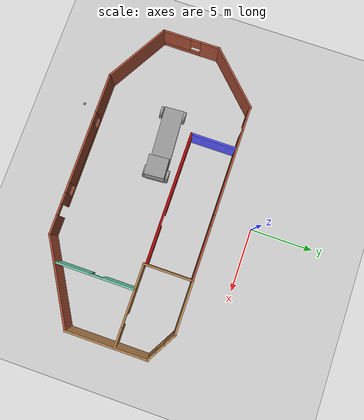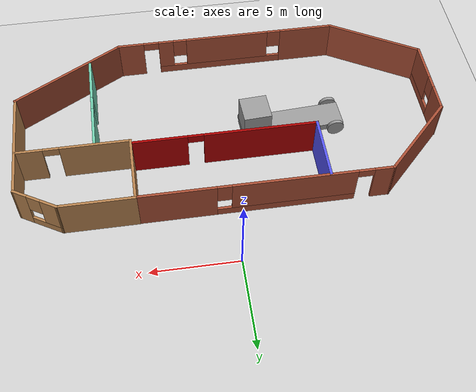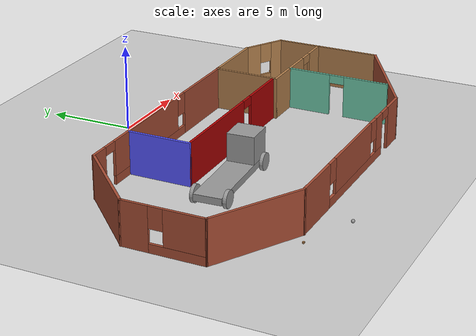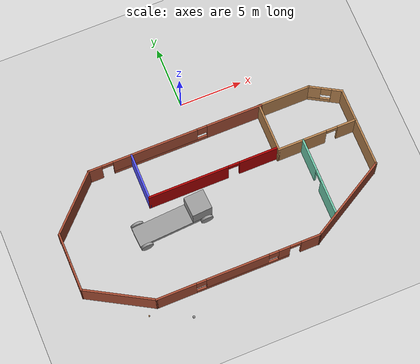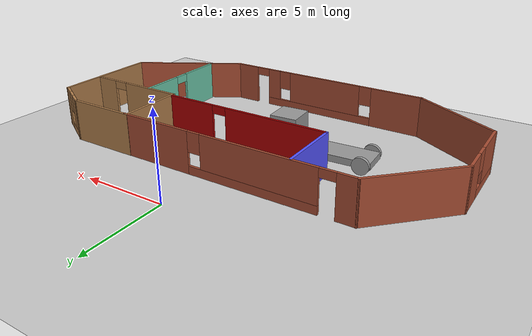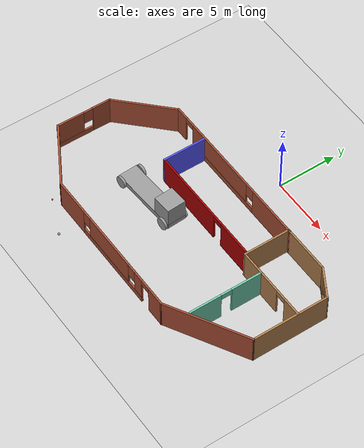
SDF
<sdf version="1.6">
 <world name="default">
  <model name="ground_plane">
   <static>1</static>
   <link name="link">
    <collision name="collision">
     <geometry><plane><normal>0 0 1</normal><size>100 100</size></plane></geometry>
     <surface>
      <contact><collide_bitmask>65535</collide_bitmask></contact>
      <friction><ode><mu>100</mu><mu2>50</mu2></ode></friction>
     </surface>
    </collision>
    <visual name="visual">
     <cast_shadows>0</cast_shadows>
     <geometry><plane><normal>0 0 1</normal><size>100 100</size></plane></geometry>
     <material>
      <script><uri>file://media/materials/scripts/gazebo.material</uri><name>Gazebo/Grey</name></script>
     </material>
    </visual>
   </link>
  </model>
  <model name="truck">
   <link name="link_0">
    <pose>-2e-06 -3e-06 1 0 -0 0</pose>
    <inertial>
     <mass>1</mass>
     <inertia>
      <ixx>0.166667</ixx>
      <ixy>0</ixy>
      <ixz>0</ixz>
      <iyy>0.166667</iyy>
      <iyz>0</iyz>
      <izz>0.166667</izz>
     </inertia>
    </inertial>
    <visual name="visual">
     <geometry><box><size>1.6 1.6 1.6</size></box></geometry>
     <material>
      <lighting>1</lighting>
      <script><uri>file://media/materials/scripts/gazebo.material</uri><name>Gazebo/Grey</name></script>
      <shader type="pixel"><normal_map>__default__</normal_map></shader>
      <ambient>0.3 0.3 0.3 1</ambient>
      <diffuse>0.7 0.7 0.7 1</diffuse>
      <specular>0.01 0.01 0.01 1</specular>
      <emissive>0 0 0 1</emissive>
     </material>
    </visual>
    <collision name="collision">
     <geometry><box><size>1.6 1.6 1.6</size></box></geometry>
     <surface>
      <friction>
       <ode><mu>1</mu><mu2>1</mu2><fdir1>0 0 0</fdir1><slip1>0</slip1><slip2>0</slip2></ode>
       <torsional>
        <coefficient>1</coefficient>
        <patch_radius>0</patch_radius>
        <surface_radius>0</surface_radius>
        <use_patch_radius>1</use_patch_radius>
        <ode><slip>0</slip></ode>
       </torsional>
      </friction>
      <bounce><restitution_coefficient>0</restitution_coefficient><threshold>1e+06</threshold></bounce>
      <contact>
       <collide_without_contact>0</collide_without_contact>
       <collide_without_contact_bitmask>1</collide_without_contact_bitmask>
       <collide_bitmask>1</collide_bitmask>
       <ode>
        <soft_cfm>0</soft_cfm>
        <soft_erp>0.2</soft_erp>
        <kp>1e+13</kp>
        <kd>1</kd>
        <max_vel>0.01</max_vel>
        <min_depth>0</min_depth>
       </ode>
       <bullet>
        <split_impulse>1</split_impulse>
        <split_impulse_penetration_threshold>-0.01</split_impulse_penetration_threshold>
        <soft_cfm>0</soft_cfm>
        <soft_erp>0.2</soft_erp>
        <kp>1e+13</kp>
        <kd>1</kd>
       </bullet>
      </contact>
     </surface>
    </collision>
   </link>
   <link name="link_1">
    <pose>-2e-06 2.2 0 0 -0 0</pose>
    <inertial>
     <mass>1</mass>
     <inertia>
      <ixx>0.166667</ixx>
      <ixy>0</ixy>
      <ixz>0</ixz>
      <iyy>0.166667</iyy>
      <iyz>0</iyz>
      <izz>0.166667</izz>
     </inertia>
    </inertial>
    <visual name="visual">
     <geometry><box><size>1.6 6 0.4</size></box></geometry>
     <material>
      <lighting>1</lighting>
      <script><uri>file://media/materials/scripts/gazebo.material</uri><name>Gazebo/Grey</name></script>
      <shader type="pixel"><normal_map>__default__</normal_map></shader>
      <ambient>0.3 0.3 0.3 1</ambient>
      <diffuse>0.7 0.7 0.7 1</diffuse>
      <specular>0.01 0.01 0.01 1</specular>
      <emissive>0 0 0 1</emissive>
     </material>
    </visual>
    <collision name="collision">
     <geometry><box><size>1.6 6 0.4</size></box></geometry>
     <surface>
      <friction>
       <ode><mu>1</mu><mu2>1</mu2><fdir1>0 0 0</fdir1><slip1>0</slip1><slip2>0</slip2></ode>
       <torsional>
        <coefficient>1</coefficient>
        <patch_radius>0</patch_radius>
        <surface_radius>0</surface_radius>
        <use_patch_radius>1</use_patch_radius>
        <ode><slip>0</slip></ode>
       </torsional>
      </friction>
      <bounce><restitution_coefficient>0</restitution_coefficient><threshold>1e+06</threshold></bounce>
      <contact>
       <collide_without_contact>0</collide_without_contact>
       <collide_without_contact_bitmask>1</collide_without_contact_bitmask>
       <collide_bitmask>1</collide_bitmask>
       <ode>
        <soft_cfm>0</soft_cfm>
        <soft_erp>0.2</soft_erp>
        <kp>1e+13</kp>
        <kd>1</kd>
        <max_vel>0.01</max_vel>
        <min_depth>0</min_depth>
       </ode>
       <bullet>
        <split_impulse>1</split_impulse>
        <split_impulse_penetration_threshold>-0.01</split_impulse_penetration_threshold>
        <soft_cfm>0</soft_cfm>
        <soft_erp>0.2</soft_erp>
        <kp>1e+13</kp>
        <kd>1</kd>
       </bullet>
      </contact>
     </surface>
    </collision>
   </link>
   <link name="link_2">
    <pose>0.900094 -0.299986 -2e-06 1.5707 0 1.5707</pose>
    <inertial>
     <mass>1</mass>
     <inertia><ixx>0.145833</ixx><ixy>0</ixy><ixz>0</ixz><iyy>0.145833</iyy><iyz>0</iyz><izz>0.125</izz></inertia>
    </inertial>
    <visual name="visual">
     <geometry><cylinder><radius>0.5</radius><length>0.2</length></cylinder></geometry>
     <material>
      <lighting>1</lighting>
      <script><uri>file://media/materials/scripts/gazebo.material</uri><name>Gazebo/Grey</name></script>
      <shader type="pixel"><normal_map>__default__</normal_map></shader>
      <ambient>0.3 0.3 0.3 1</ambient>
      <diffuse>0.7 0.7 0.7 1</diffuse>
      <specular>0.01 0.01 0.01 1</specular>
      <emissive>0 0 0 1</emissive>
     </material>
    </visual>
    <collision name="collision">
     <geometry><cylinder><radius>0.5</radius><length>0.2</length></cylinder></geometry>
     <surface>
      <friction>
       <ode><mu>1</mu><mu2>1</mu2><fdir1>0 0 0</fdir1><slip1>0</slip1><slip2>0</slip2></ode>
       <torsional>
        <coefficient>1</coefficient>
        <patch_radius>0</patch_radius>
        <surface_radius>0</surface_radius>
        <use_patch_radius>1</use_patch_radius>
        <ode><slip>0</slip></ode>
       </torsional>
      </friction>
      <bounce><restitution_coefficient>0</restitution_coefficient><threshold>1e+06</threshold></bounce>
      <contact>
       <collide_without_contact>0</collide_without_contact>
       <collide_without_contact_bitmask>1</collide_without_contact_bitmask>
       <collide_bitmask>1</collide_bitmask>
       <ode>
        <soft_cfm>0</soft_cfm>
        <soft_erp>0.2</soft_erp>
        <kp>1e+13</kp>
        <kd>1</kd>
        <max_vel>0.01</max_vel>
        <min_depth>0</min_depth>
       </ode>
       <bullet>
        <split_impulse>1</split_impulse>
        <split_impulse_penetration_threshold>-0.01</split_impulse_penetration_threshold>
        <soft_cfm>0</soft_cfm>
        <soft_erp>0.2</soft_erp>
        <kp>1e+13</kp>
        <kd>1</kd>
       </bullet>
      </contact>
     </surface>
    </collision>
   </link>
   <link name="link_2_clone">
    <pose>-0.940098 -0.299986 -2e-06 1.5707 0 1.5707</pose>
    <inertial>
     <mass>1</mass>
     <inertia><ixx>0.145833</ixx><ixy>0</ixy><ixz>0</ixz><iyy>0.145833</iyy><iyz>0</iyz><izz>0.125</izz></inertia>
    </inertial>
    <visual name="visual">
     <geometry><cylinder><radius>0.5</radius><length>0.2</length></cylinder></geometry>
     <material>
      <lighting>1</lighting>
      <script><uri>file://media/materials/scripts/gazebo.material</uri><name>Gazebo/Grey</name></script>
      <shader type="pixel"><normal_map>__default__</normal_map></shader>
      <ambient>0.3 0.3 0.3 1</ambient>
      <diffuse>0.7 0.7 0.7 1</diffuse>
      <specular>0.01 0.01 0.01 1</specular>
      <emissive>0 0 0 1</emissive>
     </material>
    </visual>
    <collision name="collision">
     <geometry><cylinder><radius>0.5</radius><length>0.2</length></cylinder></geometry>
     <surface>
      <friction>
       <ode><mu>1</mu><mu2>1</mu2><fdir1>0 0 0</fdir1><slip1>0</slip1><slip2>0</slip2></ode>
       <torsional>
        <coefficient>1</coefficient>
        <patch_radius>0</patch_radius>
        <surface_radius>0</surface_radius>
        <use_patch_radius>1</use_patch_radius>
        <ode><slip>0</slip></ode>
       </torsional>
      </friction>
      <bounce><restitution_coefficient>0</restitution_coefficient><threshold>1e+06</threshold></bounce>
      <contact>
       <collide_without_contact>0</collide_without_contact>
       <collide_without_contact_bitmask>1</collide_without_contact_bitmask>
       <collide_bitmask>1</collide_bitmask>
       <ode>
        <soft_cfm>0</soft_cfm>
        <soft_erp>0.2</soft_erp>
        <kp>1e+13</kp>
        <kd>1</kd>
        <max_vel>0.01</max_vel>
        <min_depth>0</min_depth>
       </ode>
       <bullet>
        <split_impulse>1</split_impulse>
        <split_impulse_penetration_threshold>-0.01</split_impulse_penetration_threshold>
        <soft_cfm>0</soft_cfm>
        <soft_erp>0.2</soft_erp>
        <kp>1e+13</kp>
        <kd>1</kd>
       </bullet>
      </contact>
     </surface>
    </collision>
   </link>
   <link name="link_2_clone_0">
    <pose>-0.940098 4.69999 -2e-06 1.5707 0 1.5707</pose>
    <inertial>
     <mass>1</mass>
     <inertia><ixx>0.145833</ixx><ixy>0</ixy><ixz>0</ixz><iyy>0.145833</iyy><iyz>0</iyz><izz>0.125</izz></inertia>
    </inertial>
    <visual name="visual">
     <geometry><cylinder><radius>0.5</radius><length>0.2</length></cylinder></geometry>
     <material>
      <lighting>1</lighting>
      <script><uri>file://media/materials/scripts/gazebo.material</uri><name>Gazebo/Grey</name></script>
      <shader type="pixel"><normal_map>__default__</normal_map></shader>
      <ambient>0.3 0.3 0.3 1</ambient>
      <diffuse>0.7 0.7 0.7 1</diffuse>
      <specular>0.01 0.01 0.01 1</specular>
      <emissive>0 0 0 1</emissive>
     </material>
    </visual>
    <collision name="collision">
     <geometry><cylinder><radius>0.5</radius><length>0.2</length></cylinder></geometry>
     <surface>
      <friction>
       <ode><mu>1</mu><mu2>1</mu2><fdir1>0 0 0</fdir1><slip1>0</slip1><slip2>0</slip2></ode>
       <torsional>
        <coefficient>1</coefficient>
        <patch_radius>0</patch_radius>
        <surface_radius>0</surface_radius>
        <use_patch_radius>1</use_patch_radius>
        <ode><slip>0</slip></ode>
       </torsional>
      </friction>
      <bounce><restitution_coefficient>0</restitution_coefficient><threshold>1e+06</threshold></bounce>
      <contact>
       <collide_without_contact>0</collide_without_contact>
       <collide_without_contact_bitmask>1</collide_without_contact_bitmask>
       <collide_bitmask>1</collide_bitmask>
       <ode>
        <soft_cfm>0</soft_cfm>
        <soft_erp>0.2</soft_erp>
        <kp>1e+13</kp>
        <kd>1</kd>
        <max_vel>0.01</max_vel>
        <min_depth>0</min_depth>
       </ode>
       <bullet>
        <split_impulse>1</split_impulse>
        <split_impulse_penetration_threshold>-0.01</split_impulse_penetration_threshold>
        <soft_cfm>0</soft_cfm>
        <soft_erp>0.2</soft_erp>
        <kp>1e+13</kp>
        <kd>1</kd>
       </bullet>
      </contact>
     </surface>
    </collision>
   </link>
   <link name="link_2_clone_1">
    <pose>0.900094 4.69999 -2e-06 1.5707 0 1.5707</pose>
    <inertial>
     <mass>1</mass>
     <inertia><ixx>0.145833</ixx><ixy>0</ixy><ixz>0</ixz><iyy>0.145833</iyy><iyz>0</iyz><izz>0.125</izz></inertia>
    </inertial>
    <visual name="visual">
     <geometry><cylinder><radius>0.5</radius><length>0.2</length></cylinder></geometry>
     <material>
      <lighting>1</lighting>
      <script><uri>file://media/materials/scripts/gazebo.material</uri><name>Gazebo/Grey</name></script>
      <shader type="pixel"><normal_map>__default__</normal_map></shader>
      <ambient>0.3 0.3 0.3 1</ambient>
      <diffuse>0.7 0.7 0.7 1</diffuse>
      <specular>0.01 0.01 0.01 1</specular>
      <emissive>0 0 0 1</emissive>
     </material>
    </visual>
    <collision name="collision">
     <geometry><cylinder><radius>0.5</radius><length>0.2</length></cylinder></geometry>
     <surface>
      <friction>
       <ode><mu>1</mu><mu2>1</mu2><fdir1>0 0 0</fdir1><slip1>0</slip1><slip2>0</slip2></ode>
       <torsional>
        <coefficient>1</coefficient>
        <patch_radius>0</patch_radius>
        <surface_radius>0</surface_radius>
        <use_patch_radius>1</use_patch_radius>
        <ode><slip>0</slip></ode>
       </torsional>
      </friction>
      <bounce><restitution_coefficient>0</restitution_coefficient><threshold>1e+06</threshold></bounce>
      <contact>
       <collide_without_contact>0</collide_without_contact>
       <collide_without_contact_bitmask>1</collide_without_contact_bitmask>
       <collide_bitmask>1</collide_bitmask>
       <ode>
        <soft_cfm>0</soft_cfm>
        <soft_erp>0.2</soft_erp>
        <kp>1e+13</kp>
        <kd>1</kd>
        <max_vel>0.01</max_vel>
        <min_depth>0</min_depth>
       </ode>
       <bullet>
        <split_impulse>1</split_impulse>
        <split_impulse_penetration_threshold>-0.01</split_impulse_penetration_threshold>
        <soft_cfm>0</soft_cfm>
        <soft_erp>0.2</soft_erp>
        <kp>1e+13</kp>
        <kd>1</kd>
       </bullet>
      </contact>
     </surface>
    </collision>
   </link>
   <joint name="link_0_JOINT_1" type="fixed">
    <parent>link_0</parent>
    <child>link_1</child>
    <physics>
     <ode><limit><cfm>0</cfm><erp>0.2</erp></limit><suspension><cfm>0</cfm><erp>0.2</erp></suspension></ode>
    </physics>
   </joint>
   <joint name="link_1_JOINT_1" type="revolute">
    <parent>link_1</parent>
    <child>link_2</child>
    <axis>
     <xyz>0 0 1</xyz>
     <use_parent_model_frame>0</use_parent_model_frame>
     <limit>
      <lower>-1.79769e+308</lower>
      <upper>1.79769e+308</upper>
      <effort>-1</effort>
      <velocity>-1</velocity>
     </limit>
     <dynamics>
      <spring_reference>0</spring_reference>
      <spring_stiffness>0</spring_stiffness>
      <damping>0</damping>
      <friction>0</friction>
     </dynamics>
    </axis>
    <physics>
     <ode><limit><cfm>0</cfm><erp>0.2</erp></limit><suspension><cfm>0</cfm><erp>0.2</erp></suspension></ode>
    </physics>
   </joint>
   <joint name="link_1_JOINT_2" type="revolute">
    <parent>link_1</parent>
    <child>link_2_clone_1</child>
    <axis>
     <xyz>0 0 1</xyz>
     <use_parent_model_frame>0</use_parent_model_frame>
     <limit>
      <lower>-1.79769e+308</lower>
      <upper>1.79769e+308</upper>
      <effort>-1</effort>
      <velocity>-1</velocity>
     </limit>
     <dynamics>
      <spring_reference>0</spring_reference>
      <spring_stiffness>0</spring_stiffness>
      <damping>0</damping>
      <friction>0</friction>
     </dynamics>
    </axis>
    <physics>
     <ode><limit><cfm>0</cfm><erp>0.2</erp></limit><suspension><cfm>0</cfm><erp>0.2</erp></suspension></ode>
    </physics>
   </joint>
   <joint name="link_1_JOINT_3" type="revolute">
    <parent>link_1</parent>
    <child>link_2_clone</child>
    <axis>
     <xyz>0 0 1</xyz>
     <use_parent_model_frame>0</use_parent_model_frame>
     <limit>
      <lower>-1.79769e+308</lower>
      <upper>1.79769e+308</upper>
      <effort>-1</effort>
      <velocity>-1</velocity>
     </limit>
     <dynamics>
      <spring_reference>0</spring_reference>
      <spring_stiffness>0</spring_stiffness>
      <damping>0</damping>
      <friction>0</friction>
     </dynamics>
    </axis>
    <physics>
     <ode><limit><cfm>0</cfm><erp>0.2</erp></limit><suspension><cfm>0</cfm><erp>0.2</erp></suspension></ode>
    </physics>
   </joint>
   <joint name="link_1_JOINT_4" type="revolute">
    <parent>link_1</parent>
    <child>link_2_clone_0</child>
    <axis>
     <xyz>0 0 1</xyz>
     <use_parent_model_frame>0</use_parent_model_frame>
     <limit>
      <lower>-1.79769e+308</lower>
      <upper>1.79769e+308</upper>
      <effort>-1</effort>
      <velocity>-1</velocity>
     </limit>
     <dynamics>
      <spring_reference>0</spring_reference>
      <spring_stiffness>0</spring_stiffness>
      <damping>0</damping>
      <friction>0</friction>
     </dynamics>
    </axis>
    <physics>
     <ode><limit><cfm>0</cfm><erp>0.2</erp></limit><suspension><cfm>0</cfm><erp>0.2</erp></suspension></ode>
    </physics>
   </joint>
   <static>0</static>
   <pose>-2.03706 -8.5625 0.500006 -1e-06 4e-06 1.63015</pose>
  </model>
  <model name="my_ball">
   <link name="link_0">
    <inertial>
     <mass>1</mass>
     <inertia><ixx>0.1</ixx><ixy>0</ixy><ixz>0</ixz><iyy>0.1</iyy><iyz>0</iyz><izz>0.1</izz></inertia>
    </inertial>
    <visual name="visual">
     <geometry><sphere><radius>0.1</radius></sphere></geometry>
     <material>
      <lighting>1</lighting>
      <script><uri>file://media/materials/scripts/gazebo.material</uri><name>Gazebo/Grey</name></script>
      <shader type="pixel"><normal_map>__default__</normal_map></shader>
      <ambient>1 1 1 1</ambient>
      <diffuse>1 1 1 1</diffuse>
      <specular>1 1 1 1</specular>
      <emissive>1 1 1 1</emissive>
     </material>
    </visual>
    <collision name="collision">
     <geometry><sphere><radius>0.1</radius></sphere></geometry>
     <surface>
      <friction>
       <ode><mu>1</mu><mu2>1</mu2><fdir1>0 0 0</fdir1><slip1>0</slip1><slip2>0</slip2></ode>
       <torsional>
        <coefficient>1</coefficient>
        <patch_radius>0</patch_radius>
        <surface_radius>0</surface_radius>
        <use_patch_radius>1</use_patch_radius>
        <ode><slip>0</slip></ode>
       </torsional>
      </friction>
      <bounce><restitution_coefficient>0</restitution_coefficient><threshold>1e+06</threshold></bounce>
      <contact>
       <collide_without_contact>0</collide_without_contact>
       <collide_without_contact_bitmask>1</collide_without_contact_bitmask>
       <collide_bitmask>1</collide_bitmask>
       <ode>
        <soft_cfm>0</soft_cfm>
        <soft_erp>0.2</soft_erp>
        <kp>1e+13</kp>
        <kd>1</kd>
        <max_vel>0.01</max_vel>
        <min_depth>0</min_depth>
       </ode>
       <bullet>
        <split_impulse>1</split_impulse>
        <split_impulse_penetration_threshold>-0.01</split_impulse_penetration_threshold>
        <soft_cfm>0</soft_cfm>
        <soft_erp>0.2</soft_erp>
        <kp>1e+13</kp>
        <kd>1</kd>
       </bullet>
      </contact>
     </surface>
    </collision>
   </link>
   <static>0</static>
   <pose>-5.44074 -16.0958 0.1 0 -0 0</pose>
  </model>
  <model name="wood_cube_10cm_clone">
   <link name="link">
    <pose>0 0 0.05 0 -0 0</pose>
    <inertial>
     <mass>0.5167</mass>
     <inertia>
      <ixx>0.000861167</ixx>
      <ixy>0</ixy>
      <ixz>0</ixz>
      <iyy>0.000861167</iyy>
      <iyz>0</iyz>
      <izz>0.000861167</izz>
     </inertia>
    </inertial>
    <collision name="collision">
     <geometry><box><size>0.1 0.1 0.1</size></box></geometry>
     <surface>
      <contact>
       <poissons_ratio>0.347</poissons_ratio>
       <elastic_modulus>8.8e+09</elastic_modulus>
       <ode><kp>100000</kp><kd>100</kd><max_vel>100</max_vel><min_depth>0.001</min_depth></ode>
      </contact>
      <friction>
       <torsional>
        <coefficient>1</coefficient>
        <use_patch_radius>0</use_patch_radius>
        <surface_radius>0.01</surface_radius>
       </torsional>
      </friction>
     </surface>
    </collision>
    <visual name="visual">
     <geometry><box><size>0.1 0.1 0.1</size></box></geometry>
     <material>
      <script><uri>file://media/materials/scripts/gazebo.material</uri><name>Gazebo/Wood</name></script>
     </material>
    </visual>
   </link>
   <pose>-8.49094 -14.7422 -0.001013 0 -0 0</pose>
  </model>
  <model name="building">
   <pose>-0.481454 -8.77546 0 0 -0 0</pose>
   <link name="Wall_0">
    <pose>-1.21443 5.58302 0 0 -0 3.14159</pose>
    <visual name="Wall_0_Visual_0">
     <pose>-4.8541 0 1.25 0 -0 0</pose>
     <geometry><box><size>4.5418 0.15 2.5</size></box></geometry>
     <material>
      <script><uri>file://media/materials/scripts/gazebo.material</uri><name>Gazebo/Bricks</name></script>
      <ambient>1 1 0.498039 1</ambient>
     </material>
     <meta><layer>0</layer></meta>
    </visual>
    <collision name="Wall_0_Collision_0">
     <geometry><box><size>4.5418 0.15 2.5</size></box></geometry>
     <pose>-4.8541 0 1.25 0 -0 0</pose>
    </collision>
    <visual name="Wall_0_Visual_1">
     <pose>6.5576 0 1.25 0 -0 0</pose>
     <geometry><box><size>1.1348 0.15 2.5</size></box></geometry>
     <material>
      <script><uri>file://media/materials/scripts/gazebo.material</uri><name>Gazebo/Bricks</name></script>
      <ambient>1 1 0.498039 1</ambient>
     </material>
     <meta><layer>0</layer></meta>
    </visual>
    <collision name="Wall_0_Collision_1">
     <geometry><box><size>1.1348 0.15 2.5</size></box></geometry>
     <pose>6.5576 0 1.25 0 -0 0</pose>
    </collision>
    <visual name="Wall_0_Visual_2">
     <pose>1.2535 0 0.25 0 -0 0</pose>
     <geometry><box><size>7.6734 0.15 0.5</size></box></geometry>
     <material>
      <script><uri>file://media/materials/scripts/gazebo.material</uri><name>Gazebo/Bricks</name></script>
      <ambient>1 1 0.498039 1</ambient>
     </material>
     <meta><layer>0</layer></meta>
    </visual>
    <collision name="Wall_0_Collision_2">
     <geometry><box><size>7.6734 0.15 0.5</size></box></geometry>
     <pose>1.2535 0 0.25 0 -0 0</pose>
    </collision>
    <visual name="Wall_0_Visual_3">
     <pose>1.6535 0 1.5 0 -0 0</pose>
     <geometry><box><size>6.8734 0.15 2</size></box></geometry>
     <material>
      <script><uri>file://media/materials/scripts/gazebo.material</uri><name>Gazebo/Bricks</name></script>
      <ambient>1 1 0.498039 1</ambient>
     </material>
     <meta><layer>0</layer></meta>
    </visual>
    <collision name="Wall_0_Collision_3">
     <geometry><box><size>6.8734 0.15 2</size></box></geometry>
     <pose>1.6535 0 1.5 0 -0 0</pose>
    </collision>
    <visual name="Wall_0_Visual_4">
     <pose>-2.1832 0 1.9 0 -0 0</pose>
     <geometry><box><size>0.8 0.15 1.2</size></box></geometry>
     <material>
      <script><uri>file://media/materials/scripts/gazebo.material</uri><name>Gazebo/Bricks</name></script>
      <ambient>1 1 0.498039 1</ambient>
     </material>
     <meta><layer>0</layer></meta>
    </visual>
    <collision name="Wall_0_Collision_4">
     <geometry><box><size>0.8 0.15 1.2</size></box></geometry>
     <pose>-2.1832 0 1.9 0 -0 0</pose>
    </collision>
    <visual name="Wall_0_Visual_5">
     <pose>5.5402 0 2.25 0 -0 0</pose>
     <geometry><box><size>0.9 0.15 0.5</size></box></geometry>
     <material>
      <script><uri>file://media/materials/scripts/gazebo.material</uri><name>Gazebo/Bricks</name></script>
      <ambient>1 1 0.498039 1</ambient>
     </material>
     <meta><layer>0</layer></meta>
    </visual>
    <collision name="Wall_0_Collision_5">
     <geometry><box><size>0.9 0.15 0.5</size></box></geometry>
     <pose>5.5402 0 2.25 0 -0 0</pose>
    </collision>
   </link>
   <link name="Wall_1">
    <collision name="Wall_1_Collision">
     <geometry><box><size>5.5 0.15 2.5</size></box></geometry>
     <pose>0 0 1.25 0 -0 0</pose>
    </collision>
    <visual name="Wall_1_Visual">
     <pose>0 0 1.25 0 -0 0</pose>
     <geometry><box><size>5.5 0.15 2.5</size></box></geometry>
     <material>
      <script><uri>file://media/materials/scripts/gazebo.material</uri><name>Gazebo/Bricks</name></script>
      <ambient>0.333333 0.333333 1 1</ambient>
     </material>
     <meta><layer>0</layer></meta>
    </visual>
    <pose>-10.1559 3.69151 0 0 0 -2.35619</pose>
   </link>
   <link name="Wall_10">
    <pose>8.8744 1.75 0 0 -0 0</pose>
    <visual name="Wall_10_Visual_0">
     <pose>-1.25342 0 1.25 0 -0 0</pose>
     <geometry><box><size>3.99316 0.15 2.5</size></box></geometry>
     <material>
      <script><uri>file://media/materials/scripts/gazebo.material</uri><name>Gazebo/Wood</name></script>
      <ambient>1 1 1 1</ambient>
     </material>
     <meta><layer>0</layer></meta>
    </visual>
    <collision name="Wall_10_Collision_0">
     <geometry><box><size>3.99316 0.15 2.5</size></box></geometry>
     <pose>-1.25342 0 1.25 0 -0 0</pose>
    </collision>
    <visual name="Wall_10_Visual_1">
     <pose>2.44658 0 1.25 0 -0 0</pose>
     <geometry><box><size>1.60684 0.15 2.5</size></box></geometry>
     <material>
      <script><uri>file://media/materials/scripts/gazebo.material</uri><name>Gazebo/Wood</name></script>
      <ambient>1 1 1 1</ambient>
     </material>
     <meta><layer>0</layer></meta>
    </visual>
    <collision name="Wall_10_Collision_1">
     <geometry><box><size>1.60684 0.15 2.5</size></box></geometry>
     <pose>2.44658 0 1.25 0 -0 0</pose>
    </collision>
    <visual name="Wall_10_Visual_2">
     <pose>1.19317 0 2.25 0 -0 0</pose>
     <geometry><box><size>0.9 0.15 0.5</size></box></geometry>
     <material>
      <script><uri>file://media/materials/scripts/gazebo.material</uri><name>Gazebo/Wood</name></script>
      <ambient>1 1 1 1</ambient>
     </material>
     <meta><layer>0</layer></meta>
    </visual>
    <collision name="Wall_10_Collision_2">
     <geometry><box><size>0.9 0.15 0.5</size></box></geometry>
     <pose>1.19317 0 2.25 0 -0 0</pose>
    </collision>
   </link>
   <link name="Wall_12">
    <collision name="Wall_12_Collision">
     <geometry><box><size>3.75 0.15 2.5</size></box></geometry>
     <pose>0 0 1.25 0 -0 0</pose>
    </collision>
    <visual name="Wall_12_Visual">
     <pose>0 0 1.25 0 -0 0</pose>
     <geometry><box><size>3.75 0.15 2.5</size></box></geometry>
     <material>
      <script><uri>file://media/materials/scripts/gazebo.material</uri><name>Gazebo/Grey</name></script>
      <ambient>0.333333 0.333333 1 1</ambient>
     </material>
     <meta><layer>0</layer></meta>
    </visual>
    <pose>-4.79733 3.73012 0 0 0 -1.5708</pose>
   </link>
   <link name="Wall_13">
    <pose>0.377667 1.93012 0 0 -0 0</pose>
    <visual name="Wall_13_Visual_0">
     <pose>-1.999 0 1.25 0 -0 0</pose>
     <geometry><box><size>6.502 0.15 2.5</size></box></geometry>
     <material>
      <script><uri>file://media/materials/scripts/gazebo.material</uri><name>Gazebo/Grey</name></script>
      <ambient>0.666667 0 0 1</ambient>
     </material>
     <meta><layer>0</layer></meta>
    </visual>
    <collision name="Wall_13_Collision_0">
     <geometry><box><size>6.502 0.15 2.5</size></box></geometry>
     <pose>-1.999 0 1.25 0 -0 0</pose>
    </collision>
    <visual name="Wall_13_Visual_1">
     <pose>3.701 0 1.25 0 -0 0</pose>
     <geometry><box><size>3.098 0.15 2.5</size></box></geometry>
     <material>
      <script><uri>file://media/materials/scripts/gazebo.material</uri><name>Gazebo/Grey</name></script>
      <ambient>0.666667 0 0 1</ambient>
     </material>
     <meta><layer>0</layer></meta>
    </visual>
    <collision name="Wall_13_Collision_1">
     <geometry><box><size>3.098 0.15 2.5</size></box></geometry>
     <pose>3.701 0 1.25 0 -0 0</pose>
    </collision>
    <visual name="Wall_13_Visual_2">
     <pose>1.702 0 2.25 0 -0 0</pose>
     <geometry><box><size>0.9 0.15 0.5</size></box></geometry>
     <material>
      <script><uri>file://media/materials/scripts/gazebo.material</uri><name>Gazebo/Grey</name></script>
      <ambient>0.666667 0 0 1</ambient>
     </material>
     <meta><layer>0</layer></meta>
    </visual>
    <collision name="Wall_13_Collision_2">
     <geometry><box><size>0.9 0.15 0.5</size></box></geometry>
     <pose>1.702 0 2.25 0 -0 0</pose>
    </collision>
   </link>
   <link name="Wall_15">
    <pose>7.68707 -1.32868 0 0 0 -1.5708</pose>
    <visual name="Wall_15_Visual_0">
     <pose>-1.80485 0 1.25 0 -0 0</pose>
     <geometry><box><size>2.6403 0.15 2.5</size></box></geometry>
     <material>
      <script><uri>file://media/materials/scripts/gazebo.material</uri><name>Gazebo/Grey</name></script>
      <ambient>0.435294 0.796078 0.67451 1</ambient>
     </material>
     <meta><layer>0</layer></meta>
    </visual>
    <collision name="Wall_15_Collision_0">
     <geometry><box><size>2.6403 0.15 2.5</size></box></geometry>
     <pose>-1.80485 0 1.25 0 -0 0</pose>
    </collision>
    <visual name="Wall_15_Visual_1">
     <pose>1.77015 0 1.25 0 -0 0</pose>
     <geometry><box><size>2.7097 0.15 2.5</size></box></geometry>
     <material>
      <script><uri>file://media/materials/scripts/gazebo.material</uri><name>Gazebo/Grey</name></script>
      <ambient>0.435294 0.796078 0.67451 1</ambient>
     </material>
     <meta><layer>0</layer></meta>
    </visual>
    <collision name="Wall_15_Collision_1">
     <geometry><box><size>2.7097 0.15 2.5</size></box></geometry>
     <pose>1.77015 0 1.25 0 -0 0</pose>
    </collision>
    <visual name="Wall_15_Visual_2">
     <pose>-0.0347 0 2.25 0 -0 0</pose>
     <geometry><box><size>0.9 0.15 0.5</size></box></geometry>
     <material>
      <script><uri>file://media/materials/scripts/gazebo.material</uri><name>Gazebo/Grey</name></script>
      <ambient>0.435294 0.796078 0.67451 1</ambient>
     </material>
     <meta><layer>0</layer></meta>
    </visual>
    <collision name="Wall_15_Collision_2">
     <geometry><box><size>0.9 0.15 0.5</size></box></geometry>
     <pose>-0.0347 0 2.25 0 -0 0</pose>
    </collision>
   </link>
   <link name="Wall_2">
    <pose>-12.0475 -0.5 0 0 0 -1.5708</pose>
    <visual name="Wall_2_Visual_0">
     <pose>-1.57241 0 1.25 0 -0 0</pose>
     <geometry><box><size>1.60518 0.15 2.5</size></box></geometry>
     <material>
      <script><uri>file://media/materials/scripts/gazebo.material</uri><name>Gazebo/Bricks</name></script>
      <ambient>1 0 0.498039 1</ambient>
     </material>
     <meta><layer>0</layer></meta>
    </visual>
    <collision name="Wall_2_Collision_0">
     <geometry><box><size>1.60518 0.15 2.5</size></box></geometry>
     <pose>-1.57241 0 1.25 0 -0 0</pose>
    </collision>
    <visual name="Wall_2_Visual_1">
     <pose>0.802589 0 0.25 0 -0 0</pose>
     <geometry><box><size>3.14482 0.15 0.5</size></box></geometry>
     <material>
      <script><uri>file://media/materials/scripts/gazebo.material</uri><name>Gazebo/Bricks</name></script>
      <ambient>1 0 0.498039 1</ambient>
     </material>
     <meta><layer>0</layer></meta>
    </visual>
    <collision name="Wall_2_Collision_1">
     <geometry><box><size>3.14482 0.15 0.5</size></box></geometry>
     <pose>0.802589 0 0.25 0 -0 0</pose>
    </collision>
    <visual name="Wall_2_Visual_2">
     <pose>1.20259 0 1.5 0 -0 0</pose>
     <geometry><box><size>2.34482 0.15 2</size></box></geometry>
     <material>
      <script><uri>file://media/materials/scripts/gazebo.material</uri><name>Gazebo/Bricks</name></script>
      <ambient>1 0 0.498039 1</ambient>
     </material>
     <meta><layer>0</layer></meta>
    </visual>
    <collision name="Wall_2_Collision_2">
     <geometry><box><size>2.34482 0.15 2</size></box></geometry>
     <pose>1.20259 0 1.5 0 -0 0</pose>
    </collision>
    <visual name="Wall_2_Visual_3">
     <pose>-0.369822 0 1.9 0 -0 0</pose>
     <geometry><box><size>0.8 0.15 1.2</size></box></geometry>
     <material>
      <script><uri>file://media/materials/scripts/gazebo.material</uri><name>Gazebo/Bricks</name></script>
      <ambient>1 0 0.498039 1</ambient>
     </material>
     <meta><layer>0</layer></meta>
    </visual>
    <collision name="Wall_2_Collision_3">
     <geometry><box><size>0.8 0.15 1.2</size></box></geometry>
     <pose>-0.369822 0 1.9 0 -0 0</pose>
    </collision>
   </link>
   <link name="Wall_3">
    <collision name="Wall_3_Collision">
     <geometry><box><size>5.75 0.15 2.5</size></box></geometry>
     <pose>0 0 1.25 0 -0 0</pose>
    </collision>
    <visual name="Wall_3_Visual">
     <pose>0 0 1.25 0 -0 0</pose>
     <geometry><box><size>5.75 0.15 2.5</size></box></geometry>
     <material>
      <script><uri>file://media/materials/scripts/gazebo.material</uri><name>Gazebo/Bricks</name></script>
      <ambient>1 1 1 1</ambient>
     </material>
     <meta><layer>0</layer></meta>
    </visual>
    <pose>-9.62258 -4.2 0 0 0 -0.523599</pose>
   </link>
   <link name="Wall_4">
    <pose>-0.647712 -5.6 0 0 -0 0</pose>
    <visual name="Wall_4_Visual_0">
     <pose>-5.00541 0 1.25 0 -0 0</pose>
     <geometry><box><size>3.23918 0.15 2.5</size></box></geometry>
     <material>
      <script><uri>file://media/materials/scripts/gazebo.material</uri><name>Gazebo/Bricks</name></script>
      <ambient>1 1 1 1</ambient>
     </material>
     <meta><layer>0</layer></meta>
    </visual>
    <collision name="Wall_4_Collision_0">
     <geometry><box><size>3.23918 0.15 2.5</size></box></geometry>
     <pose>-5.00541 0 1.25 0 -0 0</pose>
    </collision>
    <visual name="Wall_4_Visual_1">
     <pose>5.82694 0 1.25 0 -0 0</pose>
     <geometry><box><size>1.59612 0.15 2.5</size></box></geometry>
     <material>
      <script><uri>file://media/materials/scripts/gazebo.material</uri><name>Gazebo/Bricks</name></script>
      <ambient>1 1 1 1</ambient>
     </material>
     <meta><layer>0</layer></meta>
    </visual>
    <collision name="Wall_4_Collision_1">
     <geometry><box><size>1.59612 0.15 2.5</size></box></geometry>
     <pose>5.82694 0 1.25 0 -0 0</pose>
    </collision>
    <visual name="Wall_4_Visual_2">
     <pose>0.371529 0 0.25 0 -0 0</pose>
     <geometry><box><size>7.5147 0.15 0.5</size></box></geometry>
     <material>
      <script><uri>file://media/materials/scripts/gazebo.material</uri><name>Gazebo/Bricks</name></script>
      <ambient>1 1 1 1</ambient>
     </material>
     <meta><layer>0</layer></meta>
    </visual>
    <collision name="Wall_4_Collision_2">
     <geometry><box><size>7.5147 0.15 0.5</size></box></geometry>
     <pose>0.371529 0 0.25 0 -0 0</pose>
    </collision>
    <visual name="Wall_4_Visual_3">
     <pose>-0.076321 0 1.5 0 -0 0</pose>
     <geometry><box><size>5.019 0.15 2</size></box></geometry>
     <material>
      <script><uri>file://media/materials/scripts/gazebo.material</uri><name>Gazebo/Bricks</name></script>
      <ambient>1 1 1 1</ambient>
     </material>
     <meta><layer>0</layer></meta>
    </visual>
    <collision name="Wall_4_Collision_3">
     <geometry><box><size>5.019 0.15 2</size></box></geometry>
     <pose>-0.076321 0 1.5 0 -0 0</pose>
    </collision>
    <visual name="Wall_4_Visual_4">
     <pose>3.68103 0 1.5 0 -0 0</pose>
     <geometry><box><size>0.8957 0.15 2</size></box></geometry>
     <material>
      <script><uri>file://media/materials/scripts/gazebo.material</uri><name>Gazebo/Bricks</name></script>
      <ambient>1 1 1 1</ambient>
     </material>
     <meta><layer>0</layer></meta>
    </visual>
    <collision name="Wall_4_Collision_4">
     <geometry><box><size>0.8957 0.15 2</size></box></geometry>
     <pose>3.68103 0 1.5 0 -0 0</pose>
    </collision>
    <visual name="Wall_4_Visual_5">
     <pose>-2.98582 0 1.9 0 -0 0</pose>
     <geometry><box><size>0.8 0.15 1.2</size></box></geometry>
     <material>
      <script><uri>file://media/materials/scripts/gazebo.material</uri><name>Gazebo/Bricks</name></script>
      <ambient>1 1 1 1</ambient>
     </material>
     <meta><layer>0</layer></meta>
    </visual>
    <collision name="Wall_4_Collision_5">
     <geometry><box><size>0.8 0.15 1.2</size></box></geometry>
     <pose>-2.98582 0 1.9 0 -0 0</pose>
    </collision>
    <visual name="Wall_4_Visual_6">
     <pose>2.83318 0 1.9 0 -0 0</pose>
     <geometry><box><size>0.8 0.15 1.2</size></box></geometry>
     <material>
      <script><uri>file://media/materials/scripts/gazebo.material</uri><name>Gazebo/Bricks</name></script>
      <ambient>1 1 1 1</ambient>
     </material>
     <meta><layer>0</layer></meta>
    </visual>
    <collision name="Wall_4_Collision_6">
     <geometry><box><size>0.8 0.15 1.2</size></box></geometry>
     <pose>2.83318 0 1.9 0 -0 0</pose>
    </collision>
    <visual name="Wall_4_Visual_7">
     <pose>4.57888 0 2.25 0 -0 0</pose>
     <geometry><box><size>0.9 0.15 0.5</size></box></geometry>
     <material>
      <script><uri>file://media/materials/scripts/gazebo.material</uri><name>Gazebo/Bricks</name></script>
      <ambient>1 1 1 1</ambient>
     </material>
     <meta><layer>0</layer></meta>
    </visual>
    <collision name="Wall_4_Collision_7">
     <geometry><box><size>0.9 0.15 0.5</size></box></geometry>
     <pose>4.57888 0 2.25 0 -0 0</pose>
    </collision>
   </link>
   <link name="Wall_5">
    <collision name="Wall_5_Collision">
     <geometry><box><size>7.25 0.15 2.5</size></box></geometry>
     <pose>0 0 1.25 0 -0 0</pose>
    </collision>
    <visual name="Wall_5_Visual">
     <pose>0 0 1.25 0 -0 0</pose>
     <geometry><box><size>7.25 0.15 2.5</size></box></geometry>
     <material>
      <script><uri>file://media/materials/scripts/gazebo.material</uri><name>Gazebo/Bricks</name></script>
      <ambient>1 1 1 1</ambient>
     </material>
     <meta><layer>0</layer></meta>
    </visual>
    <pose>8.97668 -3.825 0 0 -0 0.523599</pose>
   </link>
   <link name="Wall_6">
    <collision name="Wall_6_Collision">
     <geometry><box><size>6.5 0.15 2.5</size></box></geometry>
     <pose>0 0 1.25 0 -0 0</pose>
    </collision>
    <visual name="Wall_6_Visual">
     <pose>0 0 1.25 0 -0 0</pose>
     <geometry><box><size>6.5 0.15 2.5</size></box></geometry>
     <material>
      <script><uri>file://media/materials/scripts/gazebo.material</uri><name>Gazebo/Wood</name></script>
      <ambient>1 1 1 1</ambient>
     </material>
     <meta><layer>0</layer></meta>
    </visual>
    <pose>12.0511 1.125 0 0 -0 1.5708</pose>
   </link>
   <link name="Wall_7">
    <pose>10.9252 4.95 0 0 -0 2.61799</pose>
    <visual name="Wall_7_Visual_0">
     <pose>-0.928878 0 1.25 0 -0 0</pose>
     <geometry><box><size>0.892244 0.15 2.5</size></box></geometry>
     <material>
      <script><uri>file://media/materials/scripts/gazebo.material</uri><name>Gazebo/Wood</name></script>
      <ambient>1 1 1 1</ambient>
     </material>
     <meta><layer>0</layer></meta>
    </visual>
    <collision name="Wall_7_Collision_0">
     <geometry><box><size>0.892244 0.15 2.5</size></box></geometry>
     <pose>-0.928878 0 1.25 0 -0 0</pose>
    </collision>
    <visual name="Wall_7_Visual_1">
     <pose>0.446122 0 0.25 0 -0 0</pose>
     <geometry><box><size>1.85776 0.15 0.5</size></box></geometry>
     <material>
      <script><uri>file://media/materials/scripts/gazebo.material</uri><name>Gazebo/Wood</name></script>
      <ambient>1 1 1 1</ambient>
     </material>
     <meta><layer>0</layer></meta>
    </visual>
    <collision name="Wall_7_Collision_1">
     <geometry><box><size>1.85776 0.15 0.5</size></box></geometry>
     <pose>0.446122 0 0.25 0 -0 0</pose>
    </collision>
    <visual name="Wall_7_Visual_2">
     <pose>0.846122 0 1.5 0 -0 0</pose>
     <geometry><box><size>1.05776 0.15 2</size></box></geometry>
     <material>
      <script><uri>file://media/materials/scripts/gazebo.material</uri><name>Gazebo/Wood</name></script>
      <ambient>1 1 1 1</ambient>
     </material>
     <meta><layer>0</layer></meta>
    </visual>
    <collision name="Wall_7_Collision_2">
     <geometry><box><size>1.05776 0.15 2</size></box></geometry>
     <pose>0.846122 0 1.5 0 -0 0</pose>
    </collision>
    <visual name="Wall_7_Visual_3">
     <pose>-0.082756 0 1.9 0 -0 0</pose>
     <geometry><box><size>0.8 0.15 1.2</size></box></geometry>
     <material>
      <script><uri>file://media/materials/scripts/gazebo.material</uri><name>Gazebo/Wood</name></script>
      <ambient>1 1 1 1</ambient>
     </material>
     <meta><layer>0</layer></meta>
    </visual>
    <collision name="Wall_7_Collision_3">
     <geometry><box><size>0.8 0.15 1.2</size></box></geometry>
     <pose>-0.082756 0 1.9 0 -0 0</pose>
    </collision>
   </link>
   <link name="Wall_8">
    <collision name="Wall_8_Collision">
     <geometry><box><size>4.25 0.15 2.5</size></box></geometry>
     <pose>0 0 1.25 0 -0 0</pose>
    </collision>
    <visual name="Wall_8_Visual">
     <pose>0 0 1.25 0 -0 0</pose>
     <geometry><box><size>4.25 0.15 2.5</size></box></geometry>
     <material>
      <script><uri>file://media/materials/scripts/gazebo.material</uri><name>Gazebo/Wood</name></script>
      <ambient>1 1 1 1</ambient>
     </material>
     <meta><layer>0</layer></meta>
    </visual>
    <pose>7.7494 5.6 0 0 -0 3.14159</pose>
   </link>
   <link name="Wall_9">
    <collision name="Wall_9_Collision">
     <geometry><box><size>4 0.15 2.5</size></box></geometry>
     <pose>0 0 1.25 0 -0 0</pose>
    </collision>
    <visual name="Wall_9_Visual">
     <pose>0 0 1.25 0 -0 0</pose>
     <geometry><box><size>4 0.15 2.5</size></box></geometry>
     <material>
      <script><uri>file://media/materials/scripts/gazebo.material</uri><name>Gazebo/Wood</name></script>
      <ambient>1 1 1 1</ambient>
     </material>
     <meta><layer>0</layer></meta>
    </visual>
    <pose>5.6994 3.675 0 0 0 -1.5708</pose>
   </link>
   <static>1</static>
  </model>
 </world>
</sdf>
